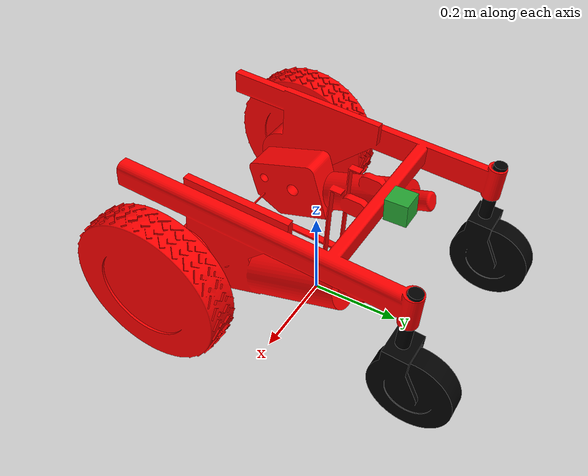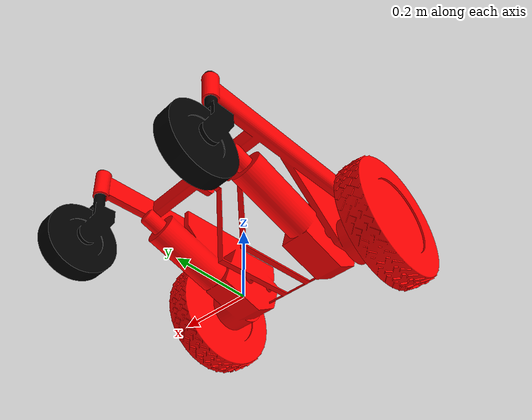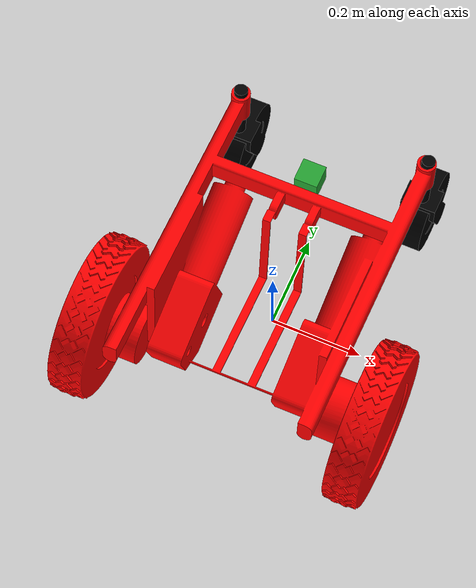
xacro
<?xml version='1.0'?>
<robot name="lawnmow" xmlns:xacro="http://www.ros.org/wiki/xacro">
  <xacro:property name="cameraSize" value="0.05"/>
  <xacro:property name="cameraMass" value="0.1"/>
  <xacro:include filename="$(find lawnmow_description)/urdf/lawnmow.gazebo" />
  <xacro:include filename="$(find lawnmow_description)/urdf/materials.xacro" />
  <xacro:include filename="$(find lawnmow_description)/urdf/macros.xacro" />

  <link name='chassis'>

    <pose>0 0 0 0 0 0</pose>

    <inertial>
      <mass value="10.0"/>
      <origin xyz="0 0 .08" rpy=" 0 0 0"/>
      <inertia
          ixx="1.0" ixy="0" ixz="0"
          iyy="1.0" iyz="0"
          izz="1.0"
      />
    </inertial>

    <collision name='collision'>
      <origin xyz="0 0 .08" rpy="0 0 0"/>
      <geometry>
        <mesh scale=".0010 .0010 .0010" filename="package://lawnmow_description/meshes/frame.stl"/>
      </geometry>
    </collision>

    <visual name='chassis_visual'>
      <origin xyz="0 0 .08" rpy=" 0 0 0"/>
      <geometry>
        <mesh scale=".0010 .0010 .0010" filename="package://lawnmow_description/meshes/frame.stl"/>
      </geometry>
      <material name="red">
          <color rgba="1 0 0 1"/>
      </material>
    </visual>
  </link>

  <link name="lfcaster">
    <collision name='lfcollision'>
      <origin xyz="0 0 0" rpy="1.47 0 0"/>
      <geometry>
        <mesh scale=".0010 .0010 .0010" filename="package://lawnmow_description/meshes/caster.stl"/>
      </geometry>

      <surface>
        <friction>
          <ode>
            <mu>0</mu>
            <mu2>0</mu2>
            <slip1>0</slip1>
            <slip2>0</slip2>
          </ode>
        </friction>
      </surface>
    </collision>

    <visual name='lfcaster_visual'>
      <origin xyz="0 0 0" rpy="1.47 0 0"/>
      <geometry>
        <mesh scale=".0010 .0010 .0010" filename="package://lawnmow_description/meshes/caster.stl"/>
      </geometry>
      <material name="black">
          <color rgba="0 0 0 1"/>
      </material>
    </visual>
    <inertial>
      <origin xyz="0.04 0.12 .18" rpy="1.57 0 0"/>
      <mass value="1.5"/>
      <cylinder_inertia m="1.5" r="0.167022" h="0.07"/>
      <inertia
        ixx="1.0" ixy="0.0" ixz="0.0"
        iyy="1.0" iyz="0.0"
        izz="1.0"/>
    </inertial>

  </link>

  <link name="rfcaster">
    <collision name='rfcollision'>
      <origin xyz="0 0 0" rpy="1.47 0 0"/>
      <geometry>
        <mesh scale=".0010 .0010 .0010" filename="package://lawnmow_description/meshes/caster.stl"/>
      </geometry>
      <surface>
        <friction>
          <ode1>
            <mu>0</mu>
            <mu2>0</mu2>
            <slip1>0</slip1>
            <slip2>0</slip2>
          </ode1>
        </friction>
      </surface>
    </collision>

    <visual name='rfcaster_visual'>
      <origin xyz="0 0 0" rpy="1.47 0 0"/>
      <geometry>
        <mesh scale=".0010 .0010 .0010" filename="package://lawnmow_description/meshes/caster.stl"/>
      </geometry>
      <material name="black">
          <color rgba="0 0 0 1"/>
      </material>
    </visual>
    <inertial>
      <origin xyz="0.04 0.12 .18" rpy="1.57 0 0"/>
      <mass value="1.5"/>
      <cylinder_inertia m="1.5" r="0.167022" h="0.07"/>
      <inertia
        ixx="1.0" ixy="0.0" ixz="0.0"
        iyy="1.0" iyz="0.0"
        izz="1.0"/>
    </inertial>

  </link>

  <link name="left_wheel">
    <collision name="collision">
      <origin xyz="0 0 0" rpy="0 0 0"/>
      <geometry>
        <mesh scale=".0010 .0010 .0010" filename="package://lawnmow_description/meshes/wheel.stl"/>
      </geometry>
    </collision>

    <visual name="left_wheel_visual">
      <origin xyz="0 0 0" rpy="0 0 0"/>
      <geometry>
        <mesh scale=".0010 .0010 .0010" filename="package://lawnmow_description/meshes/wheel.stl"/>
      </geometry>
      <material name="black">
          <color rgba="1 0 0 1"/>
      </material>
    </visual>

    <inertial>
      <origin xyz="0 0 0" rpy="0 1.57 0"/>
      <mass value="1.5"/>
      <cylinder_inertia m="1.5" r="0.167022" h="0.07"/>
      <inertia
        ixx="1.0" ixy="0.0" ixz="0.0"
        iyy="1.0" iyz="0.0"
        izz="1.0"/>
    </inertial>
  </link>

  <link name="right_wheel">
    <collision name="collision">
      <origin xyz="0 0 0" rpy="0 0 0"/>
      <geometry>
        <mesh scale=".0010 .0010 .0010" filename="package://lawnmow_description/meshes/wheel.stl"/>
      </geometry>
    </collision>

    <visual name="right_wheel_visual">
      <origin xyz="0 0 0" rpy="0 0 0"/>
      <geometry>
        <mesh scale=".0010 .0010 .0010" filename="package://lawnmow_description/meshes/wheel.stl"/>
      </geometry>
      <material name="black">
          <color rgba="1 0 0 1"/>
      </material>
    </visual>

    <inertial>
      <origin xyz="0 0 0" rpy="0 1.57 0"/>
      <mass value="1.5"/>
      <cylinder_inertia m="1.5" r="0.167022" h="0.07"/>
      <inertia
        ixx="1.0" ixy="0.0" ixz="0.0"
        iyy="1.0" iyz="0.0"
        izz="1.0"/>
    </inertial>
  </link>

  <joint type="fixed" name="lfcaster_hinge">
    <origin xyz="-0.208 0.32 0" rpy="-1.57 0 0"/>
    <child link="lfcaster"/>
    <parent link="chassis"/>
    <axis xyz="0 0 1" rpy="0 0 0"/>
    <limit effort="100" velocity="100"/>
    <joint_properties damping="0.0" friction="0.0"/>
  </joint>

  <joint type="fixed" name="rfcaster_hinge">
    <origin xyz="0.208 0.32 0" rpy="-1.57 0 0"/>
    <child link="rfcaster"/>
    <parent link="chassis"/>
    <axis xyz="0 0 1" rpy="0 0 0"/>
    <limit effort="100" velocity="100"/>
    <joint_properties damping="0.0" friction="0.0"/>
  </joint>

  <joint type="continuous" name="left_wheel_hinge">
    <origin xyz="-0.3 -0.2 0" rpy="0 0 0"/>
    <child link="left_wheel"/>
    <parent link="chassis"/>
    <axis xyz="1 0 0" rpy="0 0 0"/>
    <limit effort="100" velocity="100"/>
    <joint_properties damping="0.0" friction="0.0"/>
  </joint>

  <joint type="continuous" name="right_wheel_hinge">
    <origin xyz="0.3 -0.2 0" rpy="0 0 0"/>
    <child link="right_wheel"/>
    <parent link="chassis"/>
    <axis xyz="1 0 0" rpy="0 0 0"/>
    <limit effort="100" velocity="100"/>
    <joint_properties damping="0.0" friction="0.0"/>
  </joint>

  <link name="camera">
    <collision>
      <origin xyz="0 0 0" rpy="0 0 0"/>
      <geometry>
        <box size="${cameraSize} ${cameraSize} ${cameraSize}"/>
      </geometry>
    </collision>

    <visual>
      <origin xyz="0 .19 0.32" rpy="0 0 0"/>
      <geometry>
        <box size="${cameraSize} ${cameraSize} ${cameraSize}"/>
      </geometry>
      <material name="green"/>
    </visual>

    <inertial>
      <mass value="${cameraMass}" />
      <origin xyz="0 0 0" rpy="0 0 0"/>
      <box_inertia m="${cameraMass}" x="${cameraSize}" y="${cameraSize}" z="${cameraSize}" />
      <inertia ixx="1e-6" ixy="0" ixz="0" iyy="1e-6" iyz="0" izz="1e-6" />
    </inertial>
  </link>

  <joint name="camera_joint" type="fixed">
    <axis xyz="0 1 0" />
    <origin xyz="0 0 0" rpy="0 0 0"/>
    <parent link="chassis"/>
    <child link="camera"/>
  </joint>

</robot>
